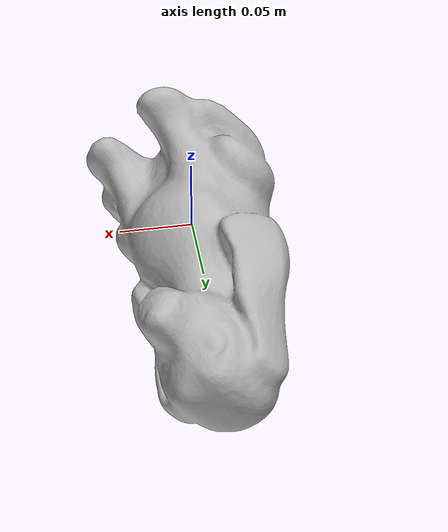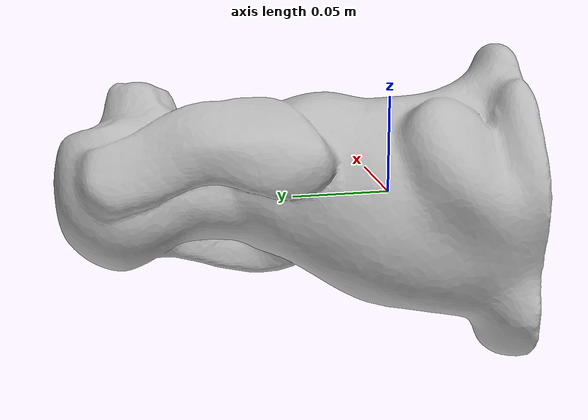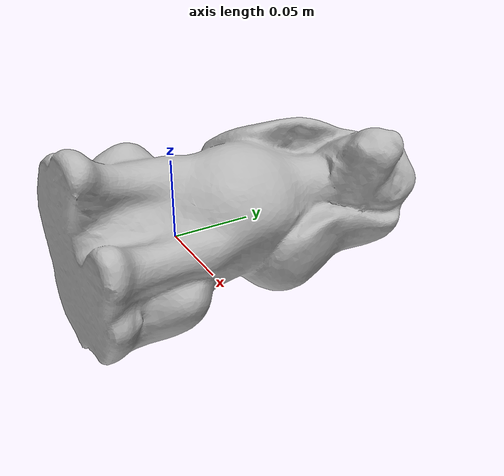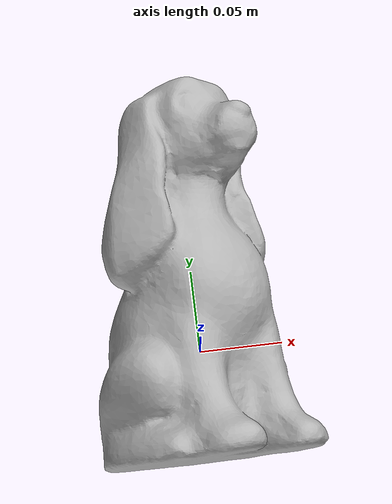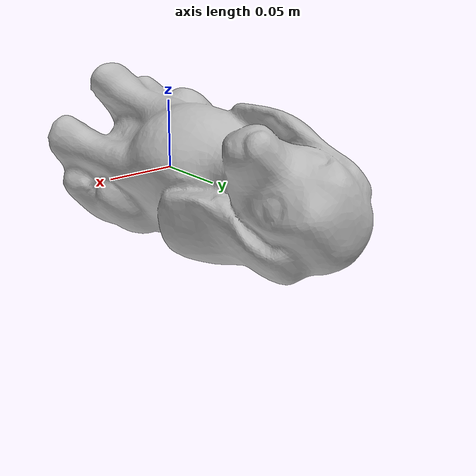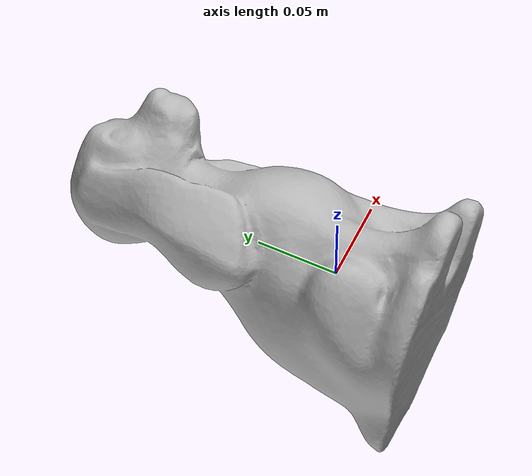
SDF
<?xml version='1.0'?>
<sdf version="1.4">
  <model name="Dog">
    <static>false</static>
    <link name="link">
      <inertial>
        <pose>-0.00032316213028095485 0.027674268194997277 0.0030536202607504676 -1.6794054285157332 -0.6149795172320249 3.134334702332372</pose>
        <mass>0.2287790046566807</mass>
        <inertia>
          <ixx>0.0011027338288765206</ixx>
          <ixy>3.240323604665755e-19</ixy>
          <ixz>3.9148658026081924e-20</ixz>
          <iyy>0.0010236772007582815</iyy>
          <iyz>1.571714846198878e-20</iyz>
          <izz>0.00041362230496310527</izz>
        </inertia>
      </inertial>
      <collision name="collision">
        <geometry>
          <mesh>
            <!-- Use a downsampled mesh for collisions -->
            <uri>model:///Dog/Dog_250_collision.obj</uri>
	        </mesh>
        </geometry>
        <surface>
      </surface>
      </collision>
      <visual name="visual">
        <geometry>
          <mesh>
            <uri>model:///Dog/Dog_25k_tex.obj</uri>
	        </mesh>
        </geometry>
        <material>
          <script>
            <uri>model:///Dog/Dog.material</uri>
            <name>Dog</name>
          </script>
        </material>
      </visual>
    </link>
  </model>
</sdf>
